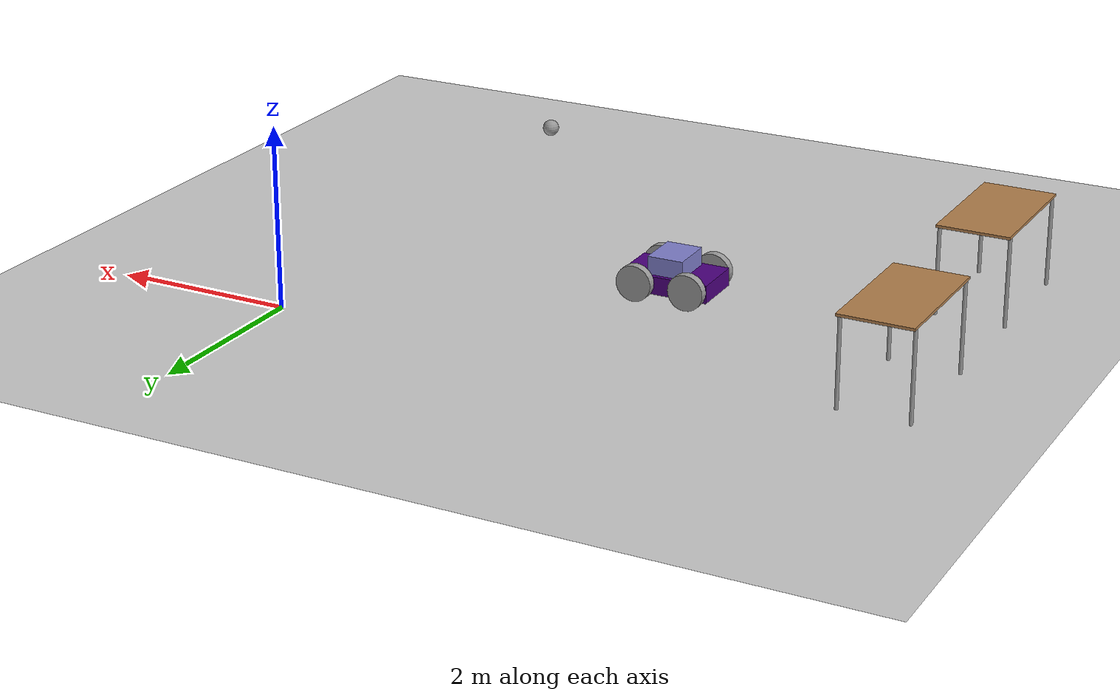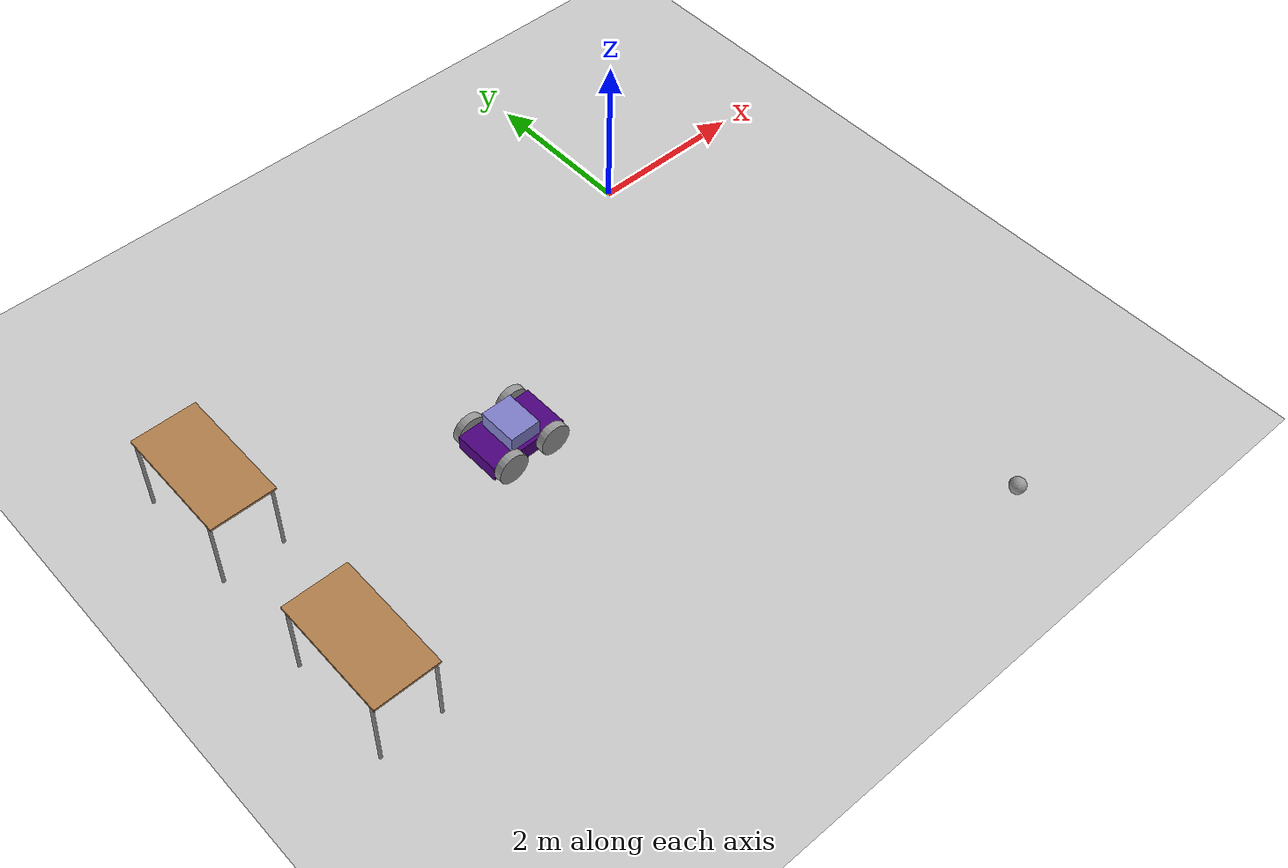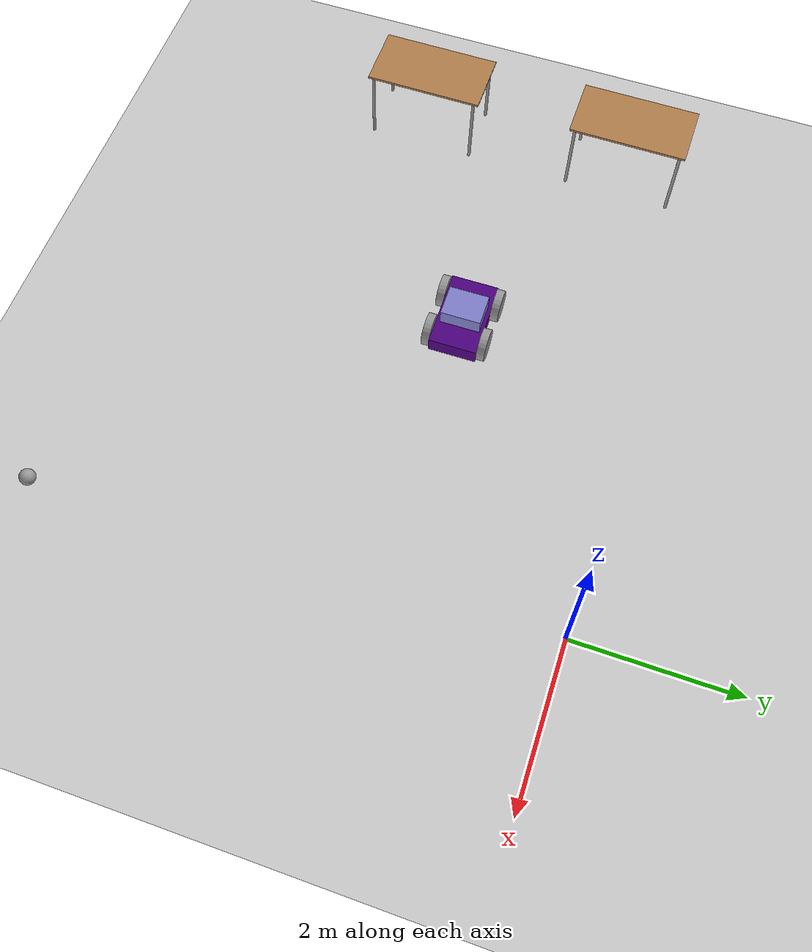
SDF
<sdf version="1.6">
 <world name="default">
  <model name="ground_plane">
   <static>1</static>
   <link name="link_gp">
    <collision name="collision">
     <geometry><plane><normal>0 0 1</normal><size>100 100</size></plane></geometry>
     <surface>
      <contact><collide_bitmask>65535</collide_bitmask></contact>
      <friction><ode><mu>100</mu><mu2>50</mu2></ode></friction>
     </surface>
    </collision>
    <visual name="visual">
     <cast_shadows>0</cast_shadows>
     <geometry><plane><normal>0 0 1</normal><size>100 100</size></plane></geometry>
     <material>
      <script><uri>file://media/materials/scripts/gazebo.material</uri><name>Gazebo/Grey</name></script>
     </material>
    </visual>
   </link>
  </model>
  <model name="table">
   <static>1</static>
   <link name="link_table_0">
    <collision name="surface">
     <pose>0 0 1 0 -0 0</pose>
     <geometry><box><size>1.5 0.8 0.03</size></box></geometry>
     <surface><friction><ode><mu>0.6</mu><mu2>0.6</mu2></ode></friction></surface>
    </collision>
    <visual name="visual1_">
     <pose>0 0 1 0 -0 0</pose>
     <geometry><box><size>1.5 0.8 0.03</size></box></geometry>
     <material>
      <script><uri>file://media/materials/scripts/gazebo.material</uri><name>Gazebo/Wood</name></script>
     </material>
    </visual>
    <collision name="front_left_leg_col">
     <pose>0.68 0.38 0.5 0 -0 0</pose>
     <geometry><cylinder><radius>0.02</radius><length>1</length></cylinder></geometry>
    </collision>
    <visual name="front_left_leg_vi">
     <pose>0.68 0.38 0.5 0 -0 0</pose>
     <geometry><cylinder><radius>0.02</radius><length>1</length></cylinder></geometry>
     <material>
      <script><uri>file://media/materials/scripts/gazebo.material</uri><name>Gazebo/Grey</name></script>
     </material>
    </visual>
    <collision name="front_right_leg_col">
     <pose>0.68 -0.38 0.5 0 -0 0</pose>
     <geometry><cylinder><radius>0.02</radius><length>1</length></cylinder></geometry>
    </collision>
    <visual name="front_right_leg_vi">
     <pose>0.68 -0.38 0.5 0 -0 0</pose>
     <geometry><cylinder><radius>0.02</radius><length>1</length></cylinder></geometry>
     <material>
      <script><uri>file://media/materials/scripts/gazebo.material</uri><name>Gazebo/Grey</name></script>
     </material>
    </visual>
    <collision name="back_right_leg_col">
     <pose>-0.68 -0.38 0.5 0 -0 0</pose>
     <geometry><cylinder><radius>0.02</radius><length>1</length></cylinder></geometry>
    </collision>
    <visual name="back_right_leg_vi">
     <pose>-0.68 -0.38 0.5 0 -0 0</pose>
     <geometry><cylinder><radius>0.02</radius><length>1</length></cylinder></geometry>
     <material>
      <script><uri>file://media/materials/scripts/gazebo.material</uri><name>Gazebo/Grey</name></script>
     </material>
    </visual>
    <collision name="back_left_leg_col">
     <pose>-0.68 0.38 0.5 0 -0 0</pose>
     <geometry><cylinder><radius>0.02</radius><length>1</length></cylinder></geometry>
    </collision>
    <visual name="back_left_leg_vi">
     <pose>-0.68 0.38 0.5 0 -0 0</pose>
     <geometry><cylinder><radius>0.02</radius><length>1</length></cylinder></geometry>
     <material>
      <script><uri>file://media/materials/scripts/gazebo.material</uri><name>Gazebo/Grey</name></script>
     </material>
    </visual>
   </link>
   <pose>-6.52815 -0.980563 0 0 -0 1.56495</pose>
  </model>
  <model name="table_clone">
   <static>1</static>
   <link name="link_table_8">
    <collision name="surface">
     <pose>0 0 1 0 -0 0</pose>
     <geometry><box><size>1.5 0.8 0.03</size></box></geometry>
     <surface><friction><ode><mu>0.6</mu><mu2>0.6</mu2></ode></friction></surface>
    </collision>
    <visual name="visual1">
     <pose>0 0 1 0 -0 0</pose>
     <geometry><box><size>1.5 0.8 0.03</size></box></geometry>
     <material>
      <script><uri>file://media/materials/scripts/gazebo.material</uri><name>Gazebo/Wood</name></script>
     </material>
    </visual>
    <collision name="front_left_leg_col">
     <pose>0.68 0.38 0.5 0 -0 0</pose>
     <geometry><cylinder><radius>0.02</radius><length>1</length></cylinder></geometry>
    </collision>
    <visual name="front_left_leg_vi">
     <pose>0.68 0.38 0.5 0 -0 0</pose>
     <geometry><cylinder><radius>0.02</radius><length>1</length></cylinder></geometry>
     <material>
      <script><uri>file://media/materials/scripts/gazebo.material</uri><name>Gazebo/Grey</name></script>
     </material>
    </visual>
    <collision name="front_right_leg">
     <pose>0.68 -0.38 0.5 0 -0 0</pose>
     <geometry><cylinder><radius>0.02</radius><length>1</length></cylinder></geometry>
    </collision>
    <visual name="front_right_leg_vi">
     <pose>0.68 -0.38 0.5 0 -0 0</pose>
     <geometry><cylinder><radius>0.02</radius><length>1</length></cylinder></geometry>
     <material>
      <script><uri>file://media/materials/scripts/gazebo.material</uri><name>Gazebo/Grey</name></script>
     </material>
    </visual>
    <collision name="back_right_leg_col">
     <pose>-0.68 -0.38 0.5 0 -0 0</pose>
     <geometry><cylinder><radius>0.02</radius><length>1</length></cylinder></geometry>
    </collision>
    <visual name="back_right_leg_vi">
     <pose>-0.68 -0.38 0.5 0 -0 0</pose>
     <geometry><cylinder><radius>0.02</radius><length>1</length></cylinder></geometry>
     <material>
      <script><uri>file://media/materials/scripts/gazebo.material</uri><name>Gazebo/Grey</name></script>
     </material>
    </visual>
    <collision name="back_left_leg_col">
     <pose>-0.68 0.38 0.5 0 -0 0</pose>
     <geometry><cylinder><radius>0.02</radius><length>1</length></cylinder></geometry>
    </collision>
    <visual name="back_left_leg_vi">
     <pose>-0.68 0.38 0.5 0 -0 0</pose>
     <geometry><cylinder><radius>0.02</radius><length>1</length></cylinder></geometry>
     <material>
      <script><uri>file://media/materials/scripts/gazebo.material</uri><name>Gazebo/Grey</name></script>
     </material>
    </visual>
   </link>
   <pose>-6.53531 -3.69411 0 0 -0 1.56495</pose>
  </model>
  <model name="Robot_mh">
   <link name="link_0">
    <inertial>
     <mass>1</mass>
     <inertia>
      <ixx>0.166667</ixx>
      <ixy>0</ixy>
      <ixz>0</ixz>
      <iyy>0.166667</iyy>
      <iyz>0</iyz>
      <izz>0.166667</izz>
     </inertia>
    </inertial>
    <pose>0.584798 0.160779 -0.013333 0 -0 0</pose>
    <visual name="visual">
     <geometry><box><size>1 0.6 0.2</size></box></geometry>
     <material>
      <lighting>1</lighting>
      <script><uri>file://media/materials/scripts/gazebo.material</uri><name>Gazebo/Grey</name></script>
      <shader type="pixel"><normal_map>__default__</normal_map></shader>
      <ambient>0.3 0 0.5 1</ambient>
      <diffuse>0.7 0.7 0.7 1</diffuse>
      <specular>0.01 0.01 0.01 1</specular>
      <emissive>0 0 0 1</emissive>
     </material>
    </visual>
    <collision name="collision">
     <geometry><box><size>1 0.6 0.2</size></box></geometry>
     <surface>
      <friction>
       <ode><mu>1</mu><mu2>1</mu2><fdir1>0 0 0</fdir1><slip1>0</slip1><slip2>0</slip2></ode>
       <torsional>
        <coefficient>1</coefficient>
        <patch_radius>0</patch_radius>
        <surface_radius>0</surface_radius>
        <use_patch_radius>1</use_patch_radius>
        <ode><slip>0</slip></ode>
       </torsional>
      </friction>
      <bounce><restitution_coefficient>0</restitution_coefficient><threshold>1e+06</threshold></bounce>
      <contact>
       <collide_without_contact>0</collide_without_contact>
       <collide_without_contact_bitmask>1</collide_without_contact_bitmask>
       <collide_bitmask>1</collide_bitmask>
       <ode>
        <soft_cfm>0</soft_cfm>
        <soft_erp>0.2</soft_erp>
        <kp>1e+13</kp>
        <kd>1</kd>
        <max_vel>0.01</max_vel>
        <min_depth>0</min_depth>
       </ode>
       <bullet>
        <split_impulse>1</split_impulse>
        <split_impulse_penetration_threshold>-0.01</split_impulse_penetration_threshold>
        <soft_cfm>0</soft_cfm>
        <soft_erp>0.2</soft_erp>
        <kp>1e+13</kp>
        <kd>1</kd>
       </bullet>
      </contact>
     </surface>
    </collision>
   </link>
   <link name="link_1">
    <inertial>
     <mass>1</mass>
     <inertia><ixx>0.145833</ixx><ixy>0</ixy><ixz>0</ixz><iyy>0.145833</iyy><iyz>0</iyz><izz>0.125</izz></inertia>
    </inertial>
    <pose>0.884798 0.510798 0.006667 0 -0 0</pose>
    <visual name="visual">
     <pose>0 0 0 1.5707 -0 0</pose>
     <geometry><cylinder><radius>0.2</radius><length>0.1</length></cylinder></geometry>
     <material>
      <lighting>1</lighting>
      <script><uri>file://media/materials/scripts/gazebo.material</uri><name>Gazebo/Grey</name></script>
      <shader type="pixel"><normal_map>__default__</normal_map></shader>
      <ambient>0 0 0 1</ambient>
      <diffuse>0.7 0.7 0.7 1</diffuse>
      <specular>0.01 0.01 0.01 1</specular>
      <emissive>0 0 0 1</emissive>
     </material>
    </visual>
    <collision name="collision">
     <pose>0 0 0 1.5707 -0 0</pose>
     <geometry><cylinder><radius>0.2</radius><length>0.1</length></cylinder></geometry>
     <surface>
      <friction>
       <ode><mu>1</mu><mu2>1</mu2><fdir1>0 0 0</fdir1><slip1>0</slip1><slip2>0</slip2></ode>
       <torsional>
        <coefficient>1</coefficient>
        <patch_radius>0</patch_radius>
        <surface_radius>0</surface_radius>
        <use_patch_radius>1</use_patch_radius>
        <ode><slip>0</slip></ode>
       </torsional>
      </friction>
      <bounce><restitution_coefficient>0</restitution_coefficient><threshold>1e+06</threshold></bounce>
      <contact>
       <collide_without_contact>0</collide_without_contact>
       <collide_without_contact_bitmask>1</collide_without_contact_bitmask>
       <collide_bitmask>1</collide_bitmask>
       <ode>
        <soft_cfm>0</soft_cfm>
        <soft_erp>0.2</soft_erp>
        <kp>1e+13</kp>
        <kd>1</kd>
        <max_vel>0.01</max_vel>
        <min_depth>0</min_depth>
       </ode>
       <bullet>
        <split_impulse>1</split_impulse>
        <split_impulse_penetration_threshold>-0.01</split_impulse_penetration_threshold>
        <soft_cfm>0</soft_cfm>
        <soft_erp>0.2</soft_erp>
        <kp>1e+13</kp>
        <kd>1</kd>
       </bullet>
      </contact>
     </surface>
    </collision>
   </link>
   <link name="link_1_clone">
    <inertial>
     <mass>1</mass>
     <inertia><ixx>0.145833</ixx><ixy>0</ixy><ixz>0</ixz><iyy>0.145833</iyy><iyz>0</iyz><izz>0.125</izz></inertia>
    </inertial>
    <pose>0.884798 -0.189241 0.006667 0 -0 0</pose>
    <visual name="visual">
     <pose>0 0 0 1.5707 -0 0</pose>
     <geometry><cylinder><radius>0.2</radius><length>0.1</length></cylinder></geometry>
     <material>
      <lighting>1</lighting>
      <script><uri>file://media/materials/scripts/gazebo.material</uri><name>Gazebo/Grey</name></script>
      <shader type="pixel"><normal_map>__default__</normal_map></shader>
      <ambient>0 0 0 1</ambient>
      <diffuse>0.7 0.7 0.7 1</diffuse>
      <specular>0.01 0.01 0.01 1</specular>
      <emissive>0 0 0 1</emissive>
     </material>
    </visual>
    <collision name="collision">
     <pose>0 0 0 1.5707 -0 0</pose>
     <geometry><cylinder><radius>0.2</radius><length>0.1</length></cylinder></geometry>
     <surface>
      <friction>
       <ode><mu>1</mu><mu2>1</mu2><fdir1>0 0 0</fdir1><slip1>0</slip1><slip2>0</slip2></ode>
       <torsional>
        <coefficient>1</coefficient>
        <patch_radius>0</patch_radius>
        <surface_radius>0</surface_radius>
        <use_patch_radius>1</use_patch_radius>
        <ode><slip>0</slip></ode>
       </torsional>
      </friction>
      <bounce><restitution_coefficient>0</restitution_coefficient><threshold>1e+06</threshold></bounce>
      <contact>
       <collide_without_contact>0</collide_without_contact>
       <collide_without_contact_bitmask>1</collide_without_contact_bitmask>
       <collide_bitmask>1</collide_bitmask>
       <ode>
        <soft_cfm>0</soft_cfm>
        <soft_erp>0.2</soft_erp>
        <kp>1e+13</kp>
        <kd>1</kd>
        <max_vel>0.01</max_vel>
        <min_depth>0</min_depth>
       </ode>
       <bullet>
        <split_impulse>1</split_impulse>
        <split_impulse_penetration_threshold>-0.01</split_impulse_penetration_threshold>
        <soft_cfm>0</soft_cfm>
        <soft_erp>0.2</soft_erp>
        <kp>1e+13</kp>
        <kd>1</kd>
       </bullet>
      </contact>
     </surface>
    </collision>
   </link>
   <link name="link_1_clone_0">
    <inertial>
     <mass>1</mass>
     <inertia><ixx>0.145833</ixx><ixy>0</ixy><ixz>0</ixz><iyy>0.145833</iyy><iyz>0</iyz><izz>0.125</izz></inertia>
    </inertial>
    <pose>0.284798 -0.189241 0.006667 0 -0 0</pose>
    <visual name="visual">
     <pose>0 0 0 1.5707 -0 0</pose>
     <geometry><cylinder><radius>0.2</radius><length>0.1</length></cylinder></geometry>
     <material>
      <lighting>1</lighting>
      <script><uri>file://media/materials/scripts/gazebo.material</uri><name>Gazebo/Grey</name></script>
      <shader type="pixel"><normal_map>__default__</normal_map></shader>
      <ambient>0 0 0 1</ambient>
      <diffuse>0.7 0.7 0.7 1</diffuse>
      <specular>0.01 0.01 0.01 1</specular>
      <emissive>0 0 0 1</emissive>
     </material>
    </visual>
    <collision name="collision">
     <pose>0 0 0 1.5707 -0 0</pose>
     <geometry><cylinder><radius>0.2</radius><length>0.1</length></cylinder></geometry>
     <surface>
      <friction>
       <ode><mu>1</mu><mu2>1</mu2><fdir1>0 0 0</fdir1><slip1>0</slip1><slip2>0</slip2></ode>
       <torsional>
        <coefficient>1</coefficient>
        <patch_radius>0</patch_radius>
        <surface_radius>0</surface_radius>
        <use_patch_radius>1</use_patch_radius>
        <ode><slip>0</slip></ode>
       </torsional>
      </friction>
      <bounce><restitution_coefficient>0</restitution_coefficient><threshold>1e+06</threshold></bounce>
      <contact>
       <collide_without_contact>0</collide_without_contact>
       <collide_without_contact_bitmask>1</collide_without_contact_bitmask>
       <collide_bitmask>1</collide_bitmask>
       <ode>
        <soft_cfm>0</soft_cfm>
        <soft_erp>0.2</soft_erp>
        <kp>1e+13</kp>
        <kd>1</kd>
        <max_vel>0.01</max_vel>
        <min_depth>0</min_depth>
       </ode>
       <bullet>
        <split_impulse>1</split_impulse>
        <split_impulse_penetration_threshold>-0.01</split_impulse_penetration_threshold>
        <soft_cfm>0</soft_cfm>
        <soft_erp>0.2</soft_erp>
        <kp>1e+13</kp>
        <kd>1</kd>
       </bullet>
      </contact>
     </surface>
    </collision>
   </link>
   <link name="link_1_clone_1">
    <inertial>
     <mass>1</mass>
     <inertia><ixx>0.145833</ixx><ixy>0</ixy><ixz>0</ixz><iyy>0.145833</iyy><iyz>0</iyz><izz>0.125</izz></inertia>
    </inertial>
    <pose>0.284798 0.510798 0.006667 0 -0 0</pose>
    <visual name="visual">
     <pose>0 0 0 1.5707 -0 0</pose>
     <geometry><cylinder><radius>0.2</radius><length>0.1</length></cylinder></geometry>
     <material>
      <lighting>1</lighting>
      <script><uri>file://media/materials/scripts/gazebo.material</uri><name>Gazebo/Grey</name></script>
      <shader type="pixel"><normal_map>__default__</normal_map></shader>
      <ambient>0 0 0 1</ambient>
      <diffuse>0.7 0.7 0.7 1</diffuse>
      <specular>0.01 0.01 0.01 1</specular>
      <emissive>0 0 0 1</emissive>
     </material>
    </visual>
    <collision name="collision">
     <pose>0 0 0 1.5707 -0 0</pose>
     <geometry><cylinder><radius>0.2</radius><length>0.1</length></cylinder></geometry>
     <surface>
      <friction>
       <ode><mu>1</mu><mu2>1</mu2><fdir1>0 0 0</fdir1><slip1>0</slip1><slip2>0</slip2></ode>
       <torsional>
        <coefficient>1</coefficient>
        <patch_radius>0</patch_radius>
        <surface_radius>0</surface_radius>
        <use_patch_radius>1</use_patch_radius>
        <ode><slip>0</slip></ode>
       </torsional>
      </friction>
      <bounce><restitution_coefficient>0</restitution_coefficient><threshold>1e+06</threshold></bounce>
      <contact>
       <collide_without_contact>0</collide_without_contact>
       <collide_without_contact_bitmask>1</collide_without_contact_bitmask>
       <collide_bitmask>1</collide_bitmask>
       <ode>
        <soft_cfm>0</soft_cfm>
        <soft_erp>0.2</soft_erp>
        <kp>1e+13</kp>
        <kd>1</kd>
        <max_vel>0.01</max_vel>
        <min_depth>0</min_depth>
       </ode>
       <bullet>
        <split_impulse>1</split_impulse>
        <split_impulse_penetration_threshold>-0.01</split_impulse_penetration_threshold>
        <soft_cfm>0</soft_cfm>
        <soft_erp>0.2</soft_erp>
        <kp>1e+13</kp>
        <kd>1</kd>
       </bullet>
      </contact>
     </surface>
    </collision>
   </link>
   <link name="link_3">
    <inertial>
     <mass>1</mass>
     <inertia>
      <ixx>0.166667</ixx>
      <ixy>0</ixy>
      <ixz>0</ixz>
      <iyy>0.166667</iyy>
      <iyz>0</iyz>
      <izz>0.166667</izz>
     </inertia>
    </inertial>
    <pose>0.584798 0.160779 0.186667 0 -0 0</pose>
    <visual name="visual">
     <geometry><box><size>0.4 0.5 0.2</size></box></geometry>
     <material>
      <lighting>1</lighting>
      <script><uri>file://media/materials/scripts/gazebo.material</uri><name>Gazebo/Grey</name></script>
      <shader type="pixel"><normal_map>__default__</normal_map></shader>
      <ambient>0.5 0.5 0.8 1</ambient>
      <diffuse>0.7 0.7 0.7 1</diffuse>
      <specular>0.01 0.01 0.01 1</specular>
      <emissive>0 0 0 1</emissive>
     </material>
    </visual>
    <collision name="collision">
     <geometry><box><size>0.4 0.5 0.2</size></box></geometry>
     <surface>
      <friction>
       <ode><mu>1</mu><mu2>1</mu2><fdir1>0 0 0</fdir1><slip1>0</slip1><slip2>0</slip2></ode>
       <torsional>
        <coefficient>1</coefficient>
        <patch_radius>0</patch_radius>
        <surface_radius>0</surface_radius>
        <use_patch_radius>1</use_patch_radius>
        <ode><slip>0</slip></ode>
       </torsional>
      </friction>
      <bounce><restitution_coefficient>0</restitution_coefficient><threshold>1e+06</threshold></bounce>
      <contact>
       <collide_without_contact>0</collide_without_contact>
       <collide_without_contact_bitmask>1</collide_without_contact_bitmask>
       <collide_bitmask>1</collide_bitmask>
       <ode>
        <soft_cfm>0</soft_cfm>
        <soft_erp>0.2</soft_erp>
        <kp>1e+13</kp>
        <kd>1</kd>
        <max_vel>0.01</max_vel>
        <min_depth>0</min_depth>
       </ode>
       <bullet>
        <split_impulse>1</split_impulse>
        <split_impulse_penetration_threshold>-0.01</split_impulse_penetration_threshold>
        <soft_cfm>0</soft_cfm>
        <soft_erp>0.2</soft_erp>
        <kp>1e+13</kp>
        <kd>1</kd>
       </bullet>
      </contact>
     </surface>
    </collision>
   </link>
   <joint name="link_0_JOINT_1" type="revolute">
    <parent>link_0</parent>
    <child>link_1</child>
    <axis>
     <xyz>0 1 0</xyz>
     <limit>
      <lower>-1.79769e+308</lower>
      <upper>1.79769e+308</upper>
      <effort>-1</effort>
      <velocity>-1</velocity>
     </limit>
     <dynamics>
      <spring_reference>0</spring_reference>
      <spring_stiffness>0</spring_stiffness>
      <damping>0</damping>
      <friction>0</friction>
     </dynamics>
     <use_parent_model_frame>0</use_parent_model_frame>
    </axis>
    <physics>
     <ode><limit><cfm>0</cfm><erp>0.2</erp></limit><suspension><cfm>0</cfm><erp>0.2</erp></suspension></ode>
    </physics>
   </joint>
   <joint name="link_0_JOINT_2" type="revolute">
    <parent>link_0</parent>
    <child>link_1_clone</child>
    <axis>
     <xyz>0 1 0</xyz>
     <limit>
      <lower>-1.79769e+308</lower>
      <upper>1.79769e+308</upper>
      <effort>-1</effort>
      <velocity>-1</velocity>
     </limit>
     <dynamics>
      <spring_reference>0</spring_reference>
      <spring_stiffness>0</spring_stiffness>
      <damping>0</damping>
      <friction>0</friction>
     </dynamics>
     <use_parent_model_frame>0</use_parent_model_frame>
    </axis>
    <physics>
     <ode><limit><cfm>0</cfm><erp>0.2</erp></limit><suspension><cfm>0</cfm><erp>0.2</erp></suspension></ode>
    </physics>
   </joint>
   <joint name="link_0_JOINT_3" type="revolute">
    <parent>link_0</parent>
    <child>link_1_clone_0</child>
    <axis>
     <xyz>0 1 0</xyz>
     <limit>
      <lower>-1.79769e+308</lower>
      <upper>1.79769e+308</upper>
      <effort>-1</effort>
      <velocity>-1</velocity>
     </limit>
     <dynamics>
      <spring_reference>0</spring_reference>
      <spring_stiffness>0</spring_stiffness>
      <damping>0</damping>
      <friction>0</friction>
     </dynamics>
     <use_parent_model_frame>0</use_parent_model_frame>
    </axis>
    <physics>
     <ode><limit><cfm>0</cfm><erp>0.2</erp></limit><suspension><cfm>0</cfm><erp>0.2</erp></suspension></ode>
    </physics>
   </joint>
   <joint name="link_0_JOINT_4" type="revolute">
    <parent>link_0</parent>
    <child>link_1_clone_1</child>
    <axis>
     <xyz>0 1 0</xyz>
     <limit>
      <lower>-1.79769e+308</lower>
      <upper>1.79769e+308</upper>
      <effort>-1</effort>
      <velocity>-1</velocity>
     </limit>
     <dynamics>
      <spring_reference>0</spring_reference>
      <spring_stiffness>0</spring_stiffness>
      <damping>0</damping>
      <friction>0</friction>
     </dynamics>
     <use_parent_model_frame>0</use_parent_model_frame>
    </axis>
    <physics>
     <ode><limit><cfm>0</cfm><erp>0.2</erp></limit><suspension><cfm>0</cfm><erp>0.2</erp></suspension></ode>
    </physics>
   </joint>
   <joint name="link_0_JOINT_5" type="fixed">
    <parent>link_0</parent>
    <child>link_3</child>
    <physics>
     <ode><limit><cfm>0</cfm><erp>0.2</erp></limit><suspension><cfm>0</cfm><erp>0.2</erp></suspension></ode>
    </physics>
   </joint>
   <static>0</static>
   <pose>-4.07651 -2.43391 0.193342 -0 1.4e-05 0.009521</pose>
  </model>
  <model name="my_ball">
   <link name="link_0">
    <inertial>
     <mass>1</mass>
     <inertia><ixx>0.1</ixx><ixy>0</ixy><ixz>0</ixz><iyy>0.1</iyy><iyz>0</iyz><izz>0.1</izz></inertia>
    </inertial>
    <visual name="visual">
     <geometry><sphere><radius>0.1</radius></sphere></geometry>
     <material>
      <lighting>1</lighting>
      <script><uri>file://media/materials/scripts/gazebo.material</uri><name>Gazebo/Grey</name></script>
      <shader type="pixel"><normal_map>__default__</normal_map></shader>
      <ambient>1 1 1 1</ambient>
      <diffuse>1 1 1 1</diffuse>
      <specular>1 1 1 1</specular>
      <emissive>1 1 1 1</emissive>
     </material>
    </visual>
    <collision name="collision">
     <geometry><sphere><radius>0.1</radius></sphere></geometry>
     <surface>
      <friction>
       <ode><mu>1</mu><mu2>1</mu2><fdir1>0 0 0</fdir1><slip1>0</slip1><slip2>0</slip2></ode>
       <torsional>
        <coefficient>1</coefficient>
        <patch_radius>0</patch_radius>
        <surface_radius>0</surface_radius>
        <use_patch_radius>1</use_patch_radius>
        <ode><slip>0</slip></ode>
       </torsional>
      </friction>
      <bounce><restitution_coefficient>0</restitution_coefficient><threshold>1e+06</threshold></bounce>
      <contact>
       <collide_without_contact>0</collide_without_contact>
       <collide_without_contact_bitmask>1</collide_without_contact_bitmask>
       <collide_bitmask>1</collide_bitmask>
       <ode>
        <soft_cfm>0</soft_cfm>
        <soft_erp>0.2</soft_erp>
        <kp>1e+13</kp>
        <kd>1</kd>
        <max_vel>0.01</max_vel>
        <min_depth>0</min_depth>
       </ode>
       <bullet>
        <split_impulse>1</split_impulse>
        <split_impulse_penetration_threshold>-0.01</split_impulse_penetration_threshold>
        <soft_cfm>0</soft_cfm>
        <soft_erp>0.2</soft_erp>
        <kp>1e+13</kp>
        <kd>1</kd>
       </bullet>
      </contact>
     </surface>
    </collision>
   </link>
   <static>0</static>
   <pose>0.201855 -6.39946 0.1 0 -0 0</pose>
  </model>
 </world>
</sdf>
